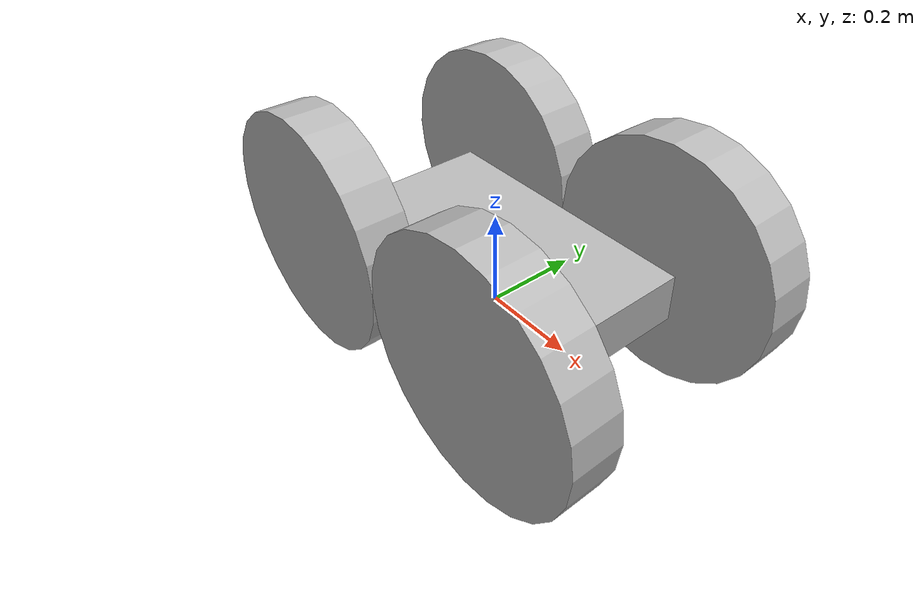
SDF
<sdf version="1.7">

    <model name='dd_robot'>

    <link name='chassis'>
        <pose>0 0 0.1 0 0 0</pose>
        <static>true</static>
        <inertial>
		<mass>10</mass>
	</inertial>
        <collision name='collision'>
            <geometry>
                <box>
                    <size> 0.6 0.35 0.1 </size>
                </box>
            </geometry>
        </collision>
        <visual name='visual'>
            <geometry>
                <box>
                    <size> 0.6 0.35 0.1 </size>
                </box>
            </geometry>
        </visual>

        </link>

        <!-- Left Wheel 1 -->
        <link name='left_wheel'>
            <pose>0.25 0.23 0.15 0 1.5707 1.5707</pose>
            <collision name='lw_collision'>
                <geometry>
                    <cylinder>
                        <radius>0.25</radius>
                        <length>0.1</length>
                    </cylinder>
                </geometry>
                <friction>
                    <ode>
                        <mu>1.0</mu>
                        <mu2>1.0</mu2>
                        <slip1>0.0</slip1>
                        <slip2>0.0</slip2>
                    </ode>
                </friction>
            </collision>
            <visual name='lw_visual'>
                <geometry>
                    <cylinder>
                        <radius>0.25</radius>
                        <length>0.1</length>
                    </cylinder>
                </geometry>
            </visual>
        </link>

        <!-- Right Wheel 1 -->
        <link name='right_wheel'>
            <pose>0.25 -0.23 0.15 0 1.5707 1.5707</pose>
            <collision name='lw_collision'>
                <geometry>
                    <cylinder>
                        <radius>0.25</radius>
                        <length>0.1</length>
                    </cylinder>
                </geometry>
                <surface>
                <friction>
                    <ode>
                        <mu>1.0</mu>
                        <mu2>1.0</mu2>
                        <slip1>0.0</slip1>
                        <slip2>0.0</slip2>
                    </ode>
                </friction>
                </surface>
            </collision>
            <visual name='lw_visual'>
                <geometry>
                    <cylinder>
                        <radius>0.25</radius>
                        <length>0.1</length>
                    </cylinder>
                </geometry>
            </visual>
        </link>

                <!-- Left Wheel 2 -->
        <link name='left_wheel_2'>
            <pose>-0.25 0.23 0.15 0 1.5707 1.5707</pose>
            <collision name='lw_collision'>
                <geometry>
                    <cylinder>
                        <radius>0.25</radius>
                        <length>0.1</length>
                    </cylinder>
                </geometry>
                <friction>
                    <ode>
                        <mu>1.0</mu>
                        <mu2>1.0</mu2>
                        <slip1>0.0</slip1>
                        <slip2>0.0</slip2>
                    </ode>
                </friction>
            </collision>
            <visual name='lw_visual'>
                <geometry>
                    <cylinder>
                        <radius>0.25</radius>
                        <length>0.1</length>
                    </cylinder>
                </geometry>
            </visual>
        </link>

        <!-- Right Wheel 2 -->
        <link name='right_wheel_2'>
            <pose>-0.25 -0.23 0.15 0 1.5707 1.5707</pose>
            <collision name='lw_collision'>
                <geometry>
                    <cylinder>
                        <radius>0.25</radius>
                        <length>0.1</length>
                    </cylinder>
                </geometry>
                <surface>
                <friction>
                    <ode>
                        <mu>1.0</mu>
                        <mu2>1.0</mu2>
                        <slip1>0.0</slip1>
                        <slip2>0.0</slip2>
                    </ode>
                </friction>
                </surface>
            </collision>
            <visual name='lw_visual'>
                <geometry>
                    <cylinder>
                        <radius>0.25</radius>
                        <length>0.1</length>
                    </cylinder>
                </geometry>
            </visual>
        </link>

        <joint type='revolute' name='left_wheel_hinge'>
            <pose> 0 0 -0.03 0 0 0 </pose>
            <child>left_wheel</child>
            <parent>chassis</parent>
            <axis>
                <xyz>0 0 1</xyz>
            </axis>
            <dynamics>
		<friction>100.0</friction>
		<spring_stiffness>0.1</spring_stiffness>
	    </dynamics>
	    <limit>
		<effort>.01</effort>
  		<velocity>0.005</velocity>
	    </limit>
        </joint>

         <joint type='revolute' name='right_wheel_hinge'>
            <pose> 0 0 0.03 0 0 0 </pose>
            <child>right_wheel</child>
            <parent>chassis</parent>
            <axis>
                <xyz>0 0 1</xyz>
            </axis>
            <dynamics>
		<friction>100.0</friction>
		<spring_stiffness>0.1</spring_stiffness>
	    </dynamics>
	    <limit>
		<effort>.01</effort>
  		<velocity>0.005</velocity>
	    </limit>
        </joint>

        <joint type='revolute' name='left_wheel_hinge_2'>
            <pose> 0 0 -0.03 0 0 0 </pose>
            <child>left_wheel_2</child>
            <parent>chassis</parent>
            <axis>
                <xyz>0 0 1</xyz>
            </axis>
            <dynamics>
		<friction>100.0</friction>
		<spring_stiffness>0.1</spring_stiffness>
	    </dynamics>
	    <limit>
		<effort>.01</effort>
  		<velocity>0.005</velocity>
	    </limit>
        </joint>

        <joint type='revolute' name='right_wheel_hinge_2'>
            <pose> 0 0 0.03 0 0 0 </pose>
            <child>right_wheel_2</child>
            <parent>chassis</parent>
            <axis>
                <xyz>0 0 1</xyz>
            </axis>
            <dynamics>
		<friction>100.0</friction>
		<spring_stiffness>0.1</spring_stiffness>
	    </dynamics>
	    <limit>
		<effort>.01</effort>
  		<velocity>0.005</velocity>
	    </limit>
        </joint>

    </model>
</sdf>
